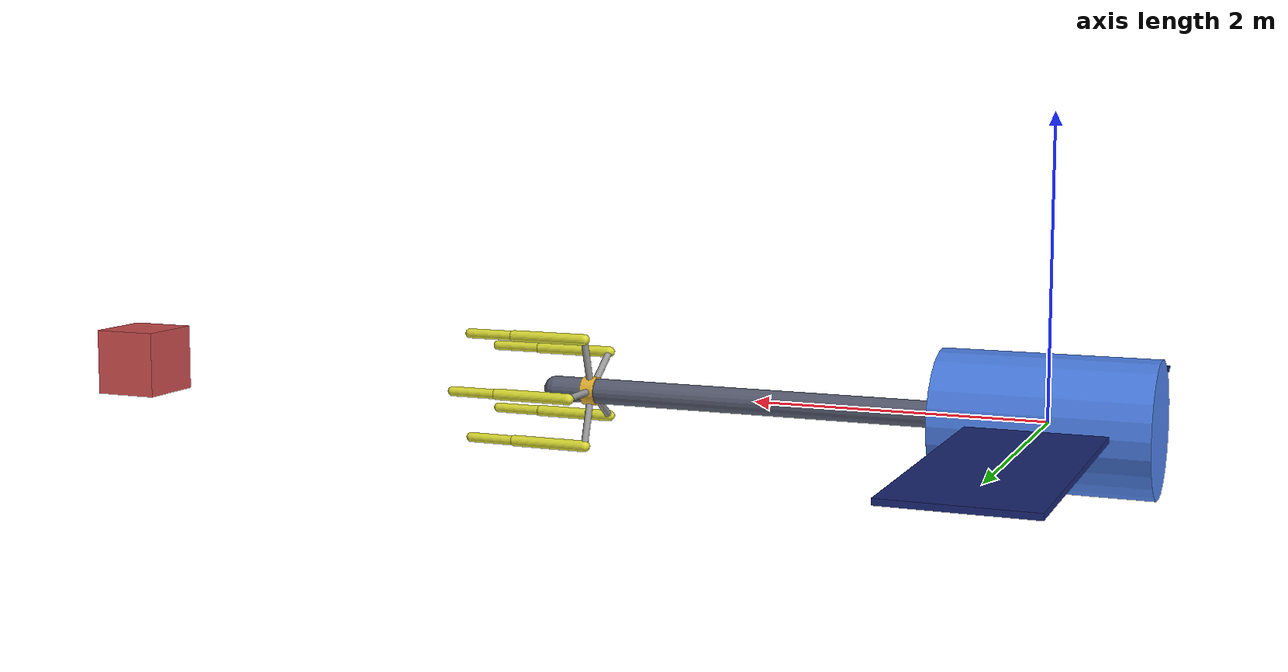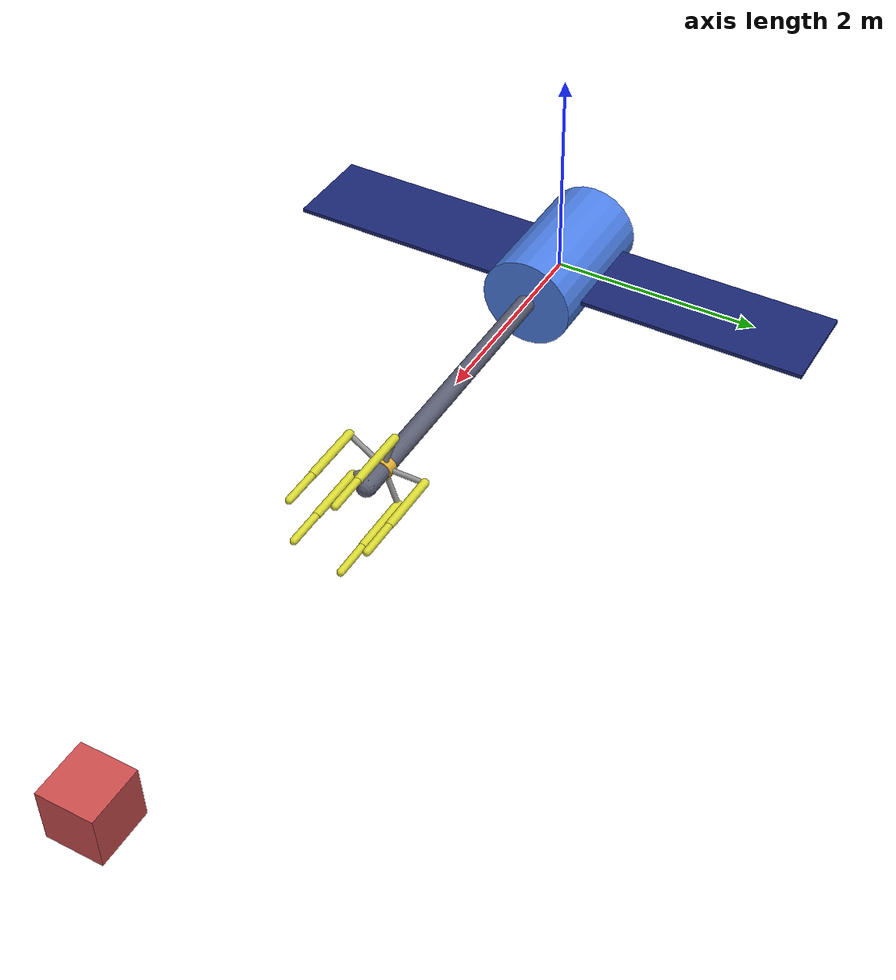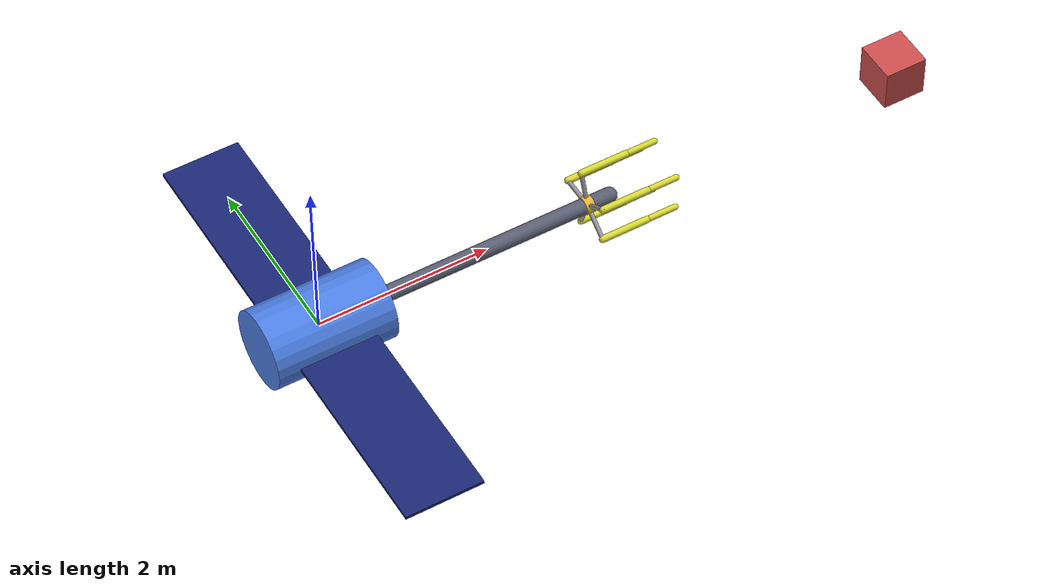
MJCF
<mujoco model="spacecraft_capture">
  <compiler angle="radian"/>
  <option timestep="0.01" gravity="0 0 0" integrator="RK4"/>

  <default>
    <joint damping="50" armature="0.5"/>
    <geom contype="1" conaffinity="2" solref="0.02 1" friction="1.5 0.05 0.001"/>
    <default class="finger">
      <joint damping="2" armature="0.02"/>
      <geom rgba="0.85 0.85 0.2 1"/>
    </default>
  </default>

  <worldbody>
    <body name="bus" pos="0 0 0" quat="1 0 0 0">
      <freejoint name="base"/>
      <!-- Circular (drum) bus: a cylinder whose axis runs along the boom (+x),
           so the boom pokes out of one round face. -->
      <geom type="cylinder" fromto="-0.7 0 0 0.7 0 0" size="0.45" mass="3000"
            rgba="0.3 0.5 0.9 1"/>
      <!-- Two solar panels: thin flat plates wing out along the bus ±y axis. -->
      <geom type="box" pos="0 1.55 0" size="0.45 1.1 0.02" mass="2"
            rgba="0.1 0.15 0.45 1"/>
      <geom type="box" pos="0 -1.55 0" size="0.45 1.1 0.02" mass="2"
            rgba="0.1 0.15 0.45 1"/>

      <geom type="capsule" fromto="0.5 0 0 3.5 0 0" size="0.09" mass="0.1"
            rgba="0.35 0.37 0.45 1"/>

      <body name="arm" pos="0.5 0 0">
        <joint name="arm_slide" type="slide" axis="1 0 0" range="0 3.8"/>
        <geom type="capsule" fromto="-1.0 0 0 2.68 0 0" size="0.06" mass="0.1"
              rgba="0.75 0.75 0.78 1"/>

        <!-- Wrist / claw hub at the boom tip; ~2.73 m out so the retracted claw
             sits at the bus-payload midpoint. -->
        <body name="ee" pos="2.73 0 0">
          <geom type="cylinder" fromto="-0.05 0 0 0.05 0 0" size="0.10" mass="0.1"
                rgba="0.9 0.7 0.2 1"/>
          <geom type="capsule" fromto="0 0 0 0 0.40000 0.00000" size="0.025" mass="0.003" rgba="0.6 0.6 0.6 1"/>
          <geom type="capsule" fromto="0 0 0 0 0.12361 0.38042" size="0.025" mass="0.003" rgba="0.6 0.6 0.6 1"/>
          <geom type="capsule" fromto="0 0 0 0 -0.32361 0.23511" size="0.025" mass="0.003" rgba="0.6 0.6 0.6 1"/>
          <geom type="capsule" fromto="0 0 0 0 -0.32361 -0.23511" size="0.025" mass="0.003" rgba="0.6 0.6 0.6 1"/>
          <geom type="capsule" fromto="0 0 0 0 0.12361 -0.38042" size="0.025" mass="0.003" rgba="0.6 0.6 0.6 1"/>

          <!-- finger 0: 0 deg -->
          <body name="f0_prox" pos="0 0.40000 0.00000" axisangle="1 0 0 0.00000" childclass="finger">
            <joint name="f0_prox" type="hinge" axis="0 0 -1" range="0 1.1"/>
            <geom type="capsule" fromto="0 0 0 0.55 0 0" size="0.04"/>
            <body name="f0_dist" pos="0.55 0 0">
              <joint name="f0_dist" type="hinge" axis="0 0 -1" range="0 1.9"/>
              <geom type="capsule" fromto="0 0 0 0.35 0 0" size="0.035"/>
            </body>
          </body>

          <!-- finger 1: 72 deg -->
          <body name="f1_prox" pos="0 0.12361 0.38042" axisangle="1 0 0 1.25664" childclass="finger">
            <joint name="f1_prox" type="hinge" axis="0 0 -1" range="0 1.1"/>
            <geom type="capsule" fromto="0 0 0 0.55 0 0" size="0.04"/>
            <body name="f1_dist" pos="0.55 0 0">
              <joint name="f1_dist" type="hinge" axis="0 0 -1" range="0 1.9"/>
              <geom type="capsule" fromto="0 0 0 0.35 0 0" size="0.035"/>
            </body>
          </body>

          <!-- finger 2: 144 deg -->
          <body name="f2_prox" pos="0 -0.32361 0.23511" axisangle="1 0 0 2.51327" childclass="finger">
            <joint name="f2_prox" type="hinge" axis="0 0 -1" range="0 1.1"/>
            <geom type="capsule" fromto="0 0 0 0.55 0 0" size="0.04"/>
            <body name="f2_dist" pos="0.55 0 0">
              <joint name="f2_dist" type="hinge" axis="0 0 -1" range="0 1.9"/>
              <geom type="capsule" fromto="0 0 0 0.35 0 0" size="0.035"/>
            </body>
          </body>

          <!-- finger 3: 216 deg -->
          <body name="f3_prox" pos="0 -0.32361 -0.23511" axisangle="1 0 0 3.76991" childclass="finger">
            <joint name="f3_prox" type="hinge" axis="0 0 -1" range="0 1.1"/>
            <geom type="capsule" fromto="0 0 0 0.55 0 0" size="0.04"/>
            <body name="f3_dist" pos="0.55 0 0">
              <joint name="f3_dist" type="hinge" axis="0 0 -1" range="0 1.9"/>
              <geom type="capsule" fromto="0 0 0 0.35 0 0" size="0.035"/>
            </body>
          </body>

          <!-- finger 4: 288 deg -->
          <body name="f4_prox" pos="0 0.12361 -0.38042" axisangle="1 0 0 5.02655" childclass="finger">
            <joint name="f4_prox" type="hinge" axis="0 0 -1" range="0 1.1"/>
            <geom type="capsule" fromto="0 0 0 0.55 0 0" size="0.04"/>
            <body name="f4_dist" pos="0.55 0 0">
              <joint name="f4_dist" type="hinge" axis="0 0 -1" range="0 1.9"/>
              <geom type="capsule" fromto="0 0 0 0.35 0 0" size="0.035"/>
            </body>
          </body>

        </body>
      </body>
    </body>

    <body name="payload" pos="7.1 0 0">
      <freejoint name="payload_free"/>
      <geom type="box" size="0.25 0.25 0.25" mass="4" rgba="0.8 0.3 0.3 1"
            contype="2" conaffinity="1"/>
    </body>
  </worldbody>

  <tendon>
    <fixed name="grip_prox">
      <joint joint="f0_prox" coef="0.18182"/>
      <joint joint="f1_prox" coef="0.18182"/>
      <joint joint="f2_prox" coef="0.18182"/>
      <joint joint="f3_prox" coef="0.18182"/>
      <joint joint="f4_prox" coef="0.18182"/>
    </fixed>
    <fixed name="grip_dist">
      <joint joint="f0_dist" coef="0.10526"/>
      <joint joint="f1_dist" coef="0.10526"/>
      <joint joint="f2_dist" coef="0.10526"/>
      <joint joint="f3_dist" coef="0.10526"/>
      <joint joint="f4_dist" coef="0.10526"/>
    </fixed>
  </tendon>

  <actuator>
    <!-- Realistic stiff servos (fine at dt=0.01). -->
    <!-- Telescoping reach. -->
    <position name="extend" joint="arm_slide" kp="2000" kv="600" ctrlrange="0 3.8"
              forcerange="-300 300"/>
    <!-- Claw phase: 0 = fully open, 1 = closed/gripping. Both rows take the same
         [0,1] phase; contact limits how far the fingers actually travel. -->
    <position name="grip_prox" tendon="grip_prox" kp="300" kv="40" ctrlrange="0 1"/>
    <position name="grip_dist" tendon="grip_dist" kp="300" kv="40" ctrlrange="0 1"/>
  </actuator>

  <sensor>
    <framepos name="ee_pos" objtype="body" objname="ee"/>
    <framequat name="ee_quat" objtype="body" objname="ee"/>
    <framelinvel name="ee_linvel" objtype="body" objname="ee"/>
    <framepos name="payload_pos" objtype="body" objname="payload"/>
    <framelinvel name="payload_linvel" objtype="body" objname="payload"/>
  </sensor>

  <mjorbit use_j2="false" use_drag="false" use_srp="false" use_magnetic="false"
           use_gravity_gradient="true">
  </mjorbit>
</mujoco>
